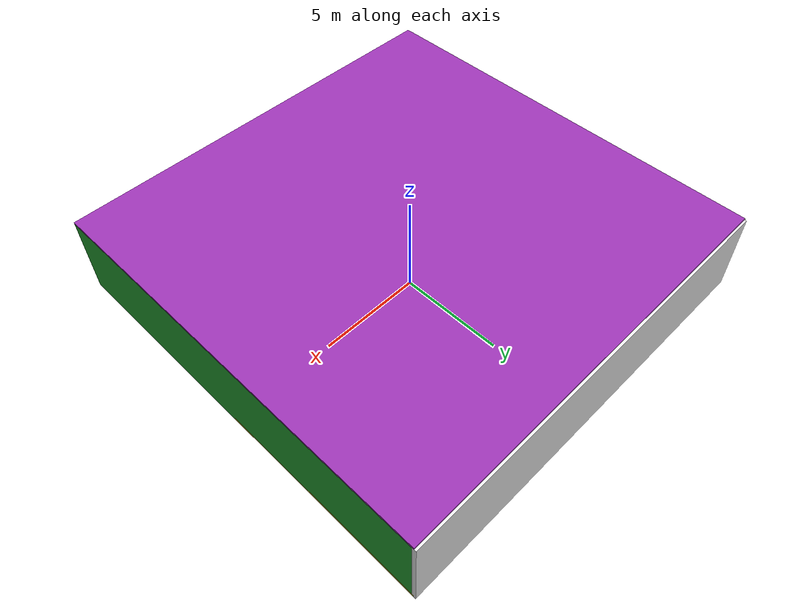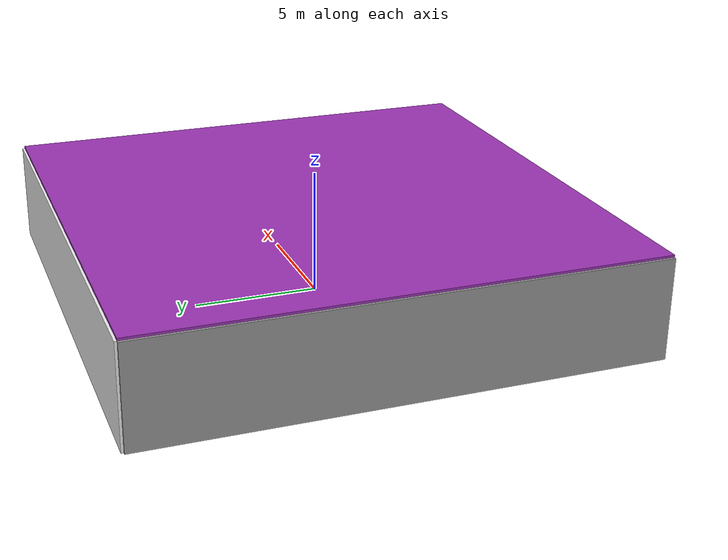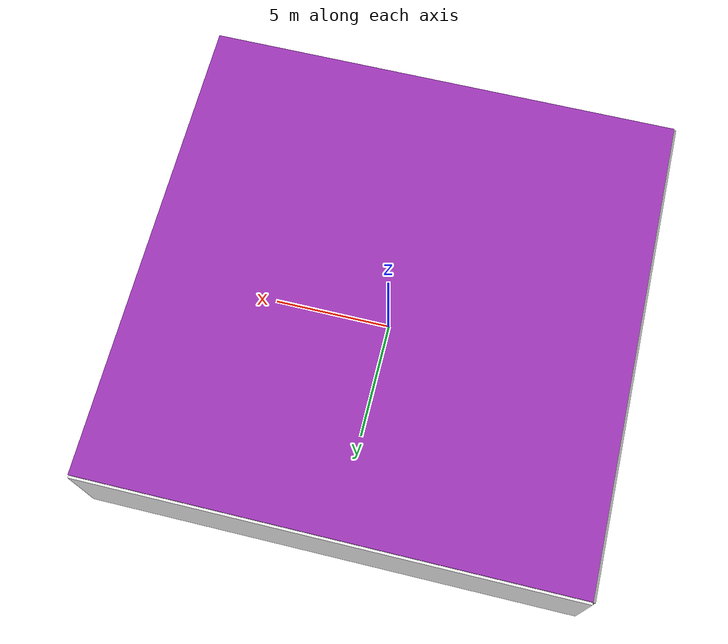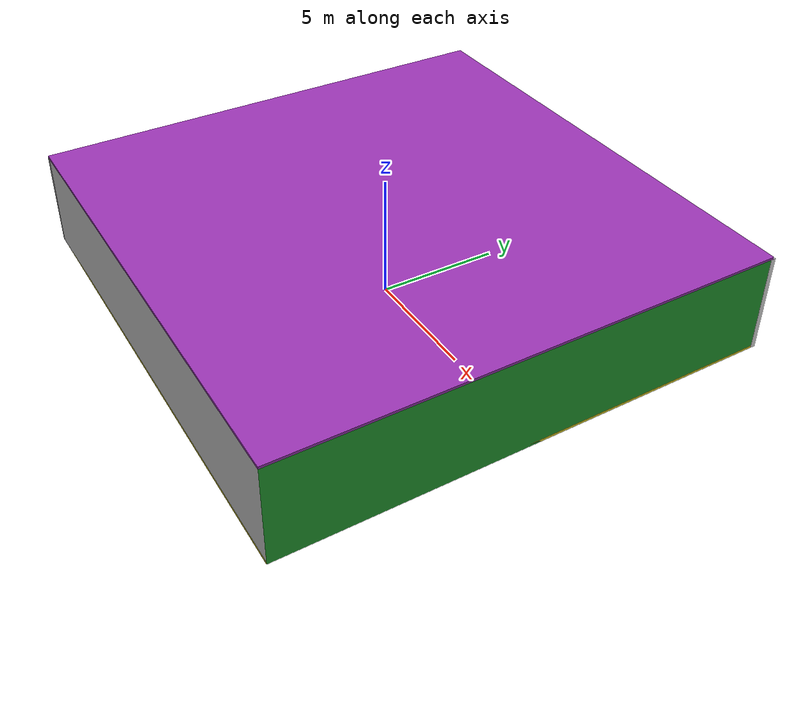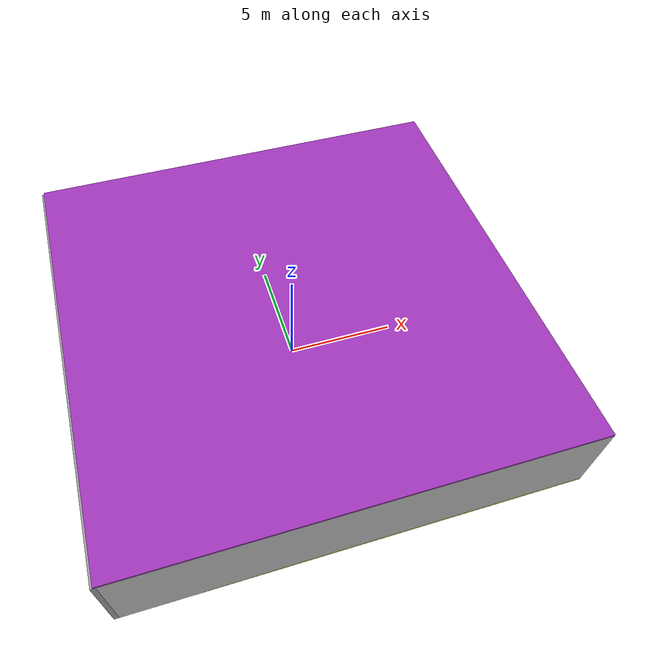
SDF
<sdf version="1.4">
 <world name="default">
  <physics type="ode">
   <max_step_size>0.001</max_step_size>
   <real_time_factor>1</real_time_factor>
   <real_time_update_rate>1000</real_time_update_rate>
   <gravity>0 0 -9.8</gravity>
  </physics>
  <scene><ambient>0.4 0.4 0.4 1</ambient><background>0.7 0.7 0.7 1</background><shadows>1</shadows></scene>
  <model name="Surrounding">
   <static>1</static>
   <link name="Ceiling">
    <collision name="Ceiling_Collision"><geometry><box><size>20 20 0.1</size></box></geometry></collision>
    <visual name="Ceiling_Visual">
     <geometry><box><size>20 20 0.1</size></box></geometry>
     <material>
      <script><uri>file://media/materials/scripts/gazebo.material</uri><name>Gazebo/Purple</name></script>
     </material>
    </visual>
    <pose>0 0 4.05 0 0 0</pose>
   </link>
   <link name="Wall_South">
    <collision name="Wall_South_Collision">
     <geometry><box><size>20 0 4</size></box></geometry>
     <pose>0 0 2 0 -0 0</pose>
    </collision>
    <visual name="Wall_South_Visual">
     <pose>0 0 2 0 -0 0</pose>
     <geometry><box><size>20 0 4</size></box></geometry>
     <material>
      <script><uri>file://media/materials/scripts/gazebo.material</uri><name>Gazebo/LightOn</name></script>
     </material>
    </visual>
    <velocity_decay><linear>0</linear><angular>0</angular></velocity_decay>
    <pose>0 -10 0 0 -0 0</pose>
   </link>
   <link name="Wall_East">
    <collision name="Wall_21_Collision">
     <geometry><box><size>20 0 4</size></box></geometry>
     <pose>0 0 2 0 -0 0</pose>
    </collision>
    <visual name="Wall_21_Visual">
     <pose>0 0 2 0 -0 0</pose>
     <geometry><box><size>20 0 4</size></box></geometry>
     <material>
      <script><uri>file://media/materials/scripts/gazebo.material</uri><name>Gazebo/GreenGlow</name></script>
     </material>
    </visual>
    <velocity_decay><linear>0</linear><angular>0</angular></velocity_decay>
    <pose>10 0 0 0 -0 1.5708</pose>
   </link>
   <link name="Wall_North">
    <collision name="Wall_22_Collision">
     <geometry><box><size>20 0.2 4</size></box></geometry>
     <pose>0 0 2 0 -0 0</pose>
    </collision>
    <visual name="Wall_22_Visual">
     <pose>0 0 2 0 -0 0</pose>
     <geometry><box><size>20 0.2 4</size></box></geometry>
     <material>
      <script><uri>file://media/materials/scripts/gazebo.material</uri><name>Gazebo/White</name></script>
     </material>
    </visual>
    <velocity_decay><linear>0</linear><angular>0</angular></velocity_decay>
    <pose>0 10 0 0 -0 0</pose>
   </link>
   <link name="Wall_West">
    <collision name="Wall_23_Collision">
     <geometry><box><size>20 0.2 4</size></box></geometry>
     <pose>0 0 2 0 -0 0</pose>
    </collision>
    <visual name="Wall_23_Visual">
     <pose>0 0 2 0 -0 0</pose>
     <geometry><box><size>20 0.2 4</size></box></geometry>
     <material>
      <script><uri>file://media/materials/scripts/gazebo.material</uri><name>Gazebo/Grey</name></script>
     </material>
    </visual>
    <velocity_decay><linear>0</linear><angular>0</angular></velocity_decay>
    <pose>-10 0 0 0 0 -1.5708</pose>
   </link>
   <link name="Ground_link">
    <collision name="collision">
     <pose>0 0 .05 0 -0 0</pose>
     <geometry><box><size>20 20 0.1</size></box></geometry>
    </collision>
    <visual name="visual">
     <pose>0 0 .05 0 -0 0</pose>
     <geometry><box><size>20 20 0.1</size></box></geometry>
     <material>
      <script><uri>file://media/materials/scripts/gazebo.material</uri><name>Gazebo/YellowGlow</name></script>
     </material>
    </visual>
   </link>
   <static>1</static>
  </model>
  <spherical_coordinates>
   <surface_model>EARTH_WGS84</surface_model>
   <latitude_deg>0</latitude_deg>
   <longitude_deg>0</longitude_deg>
   <elevation>0</elevation>
   <heading_deg>0</heading_deg>
  </spherical_coordinates>
  <light name="lightball_0" type="diffuse">
   <diffuse>0.8 0.8 0.8 1</diffuse>
   <specular>0.2 0.2 0.2 1</specular>
   <attenuation>
    <range>100</range>
    <constant>0.7</constant>
    <linear>0.01</linear>
    <quadratic>0.001</quadratic>
   </attenuation>
   <direction>-0.5 0.1 -0.9</direction>
   <pose>-1.33403013457 6.0509882912 2.5651942356 0 0 0</pose>
  </light>
  <light name="lightball_1" type="diffuse">
   <diffuse>0.8 0.8 0.8 1</diffuse>
   <specular>0.2 0.2 0.2 1</specular>
   <attenuation>
    <range>100</range>
    <constant>0.7</constant>
    <linear>0.01</linear>
    <quadratic>0.001</quadratic>
   </attenuation>
   <direction>-0.5 0.1 -0.9</direction>
   <pose>3.55696857917 -4.9125691111 3.64657231889 0 0 0</pose>
  </light>
  <light name="lightball_2" type="diffuse">
   <diffuse>0.8 0.8 0.8 1</diffuse>
   <specular>0.2 0.2 0.2 1</specular>
   <attenuation>
    <range>100</range>
    <constant>0.7</constant>
    <linear>0.01</linear>
    <quadratic>0.001</quadratic>
   </attenuation>
   <direction>-0.5 0.1 -0.9</direction>
   <pose>-8.62755327221 5.05632669542 0.889996858037 0 0 0</pose>
  </light>
  <light name="lightball_3" type="diffuse">
   <diffuse>0.8 0.8 0.8 1</diffuse>
   <specular>0.2 0.2 0.2 1</specular>
   <attenuation>
    <range>100</range>
    <constant>0.7</constant>
    <linear>0.01</linear>
    <quadratic>0.001</quadratic>
   </attenuation>
   <direction>-0.5 0.1 -0.9</direction>
   <pose>2.42017001636 7.52498927534 1.09606221438 0 0 0</pose>
  </light>
  <light name="lightball_4" type="diffuse">
   <diffuse>0.8 0.8 0.8 1</diffuse>
   <specular>0.2 0.2 0.2 1</specular>
   <attenuation>
    <range>100</range>
    <constant>0.7</constant>
    <linear>0.01</linear>
    <quadratic>0.001</quadratic>
   </attenuation>
   <direction>-0.5 0.1 -0.9</direction>
   <pose>3.30128326739 -7.00310188066 1.09916711281 0 0 0</pose>
  </light>
  <include>
   <uri>model://textured_shapes</uri>
   <pose>-7.41352803545 -4.20252578981 0 0 0 2.36090208982</pose>
  </include>
  <include><uri>model://cabinet</uri><pose>-7.65574615702 3.7188495788 0 0 0 1.57856764113</pose></include>
  <include><uri>model://cabinet</uri><pose>-4.87046011721 -6.79128840979 0 0 0 1.82100239992</pose></include>
  <include><uri>model://cabinet</uri><pose>-4.67774945501 -4.34414120568 0 0 0 2.15873352371</pose></include>
  <include><uri>model://cabinet</uri><pose>-4.12190827552 8.12453063341 0 0 0 0.419772748688</pose></include>
  <include><uri>model://cabinet</uri><pose>-1.70408674339 4.01028008738 0 0 0 2.96999821956</pose></include>
  <include>
   <uri>model://construction_cone</uri>
   <pose>1.95651143143 -4.3758620498 0 0 0 0.342640139409</pose>
  </include>
  <include>
   <uri>model://construction_cone</uri>
   <pose>1.07544322548 7.12413235749 0 0 0 1.41971247858</pose>
  </include>
  <include><uri>model://table</uri><pose>7.50136594377 -8.20801679953 0 0 0 1.59942949989</pose></include>
  <include>
   <uri>model://construction_cone</uri>
   <pose>8.10321524796 1.93651944583 0 0 0 0.94311323951</pose>
  </include>
  <include><uri>model://cabinet</uri><pose>7.72512953339 7.94201835319 0 0 0 0.13350886041</pose></include>
 </world>
</sdf>

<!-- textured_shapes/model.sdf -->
<sdf version="1.6">
  <model name="textured_shapes">
    <pose>0 0 0.5 0 0 0</pose>
    <link name="box">
      <pose>0 -1.5 0 0 0 0</pose>
      <collision name="collision">
        <geometry>
          <box>
            <size>1 1 1</size>
          </box>
        </geometry>
      </collision>
      <visual name="visual">
        <geometry>
          <box>
            <size>1 1 1</size>
          </box>
        </geometry>
        <material>
          <script>
            <uri>model://../model_source/models/textured_shapes/materials/scripts</uri>
            <uri>model://../model_source/models/textured_shapes/materials/textures</uri>
            <name>TexturedShape/Squares</name>
          </script>
        </material>
      </visual>
    </link>
    <link name="sphere">
      <collision name="collision">
        <geometry>
          <sphere>
            <radius>0.5</radius>
          </sphere>
        </geometry>
      </collision>
      <visual name="visual">
        <geometry>
          <sphere>
            <radius>0.5</radius>
          </sphere>
        </geometry>
        <material>
          <script>
            <uri>model://../model_source/models/textured_shapes/materials/scripts</uri>
            <uri>model://../model_source/models/textured_shapes/materials/textures</uri>
            <name>TexturedShape/Squares</name>
          </script>
        </material>
      </visual>
    </link>
    <link name="cylinder">
      <pose>0 1.5 0 0 0 0</pose>
      <collision name="collision">
        <geometry>
          <cylinder>
            <radius>0.5</radius>
            <length>1</length>
          </cylinder>
        </geometry>
      </collision>
      <visual name="visual">
        <geometry>
          <cylinder>
            <radius>0.5</radius>
            <length>1</length>
          </cylinder>
        </geometry>
        <material>
          <script>
            <uri>model://../model_source/models/textured_shapes/materials/scripts</uri>
            <uri>model://../model_source/models/textured_shapes/materials/textures</uri>
            <name>TexturedShape/Squares</name>
          </script>
        </material>
      </visual>
    </link>
  </model>
</sdf>

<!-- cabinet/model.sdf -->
<sdf version="1.5">
  <model name="cabinet">
    <static>true</static>
    <link name="cabinet_bottom_plate">
      <inertial>
        <pose>0 0 -1 0 0 0</pose>
        <inertia>
          <ixx>2.050000</ixx>
          <ixy>0</ixy>
          <ixz>0</ixz>
          <iyy>2.050000</iyy>
          <iyz>0</iyz>
          <izz>2.050000</izz>
        </inertia>
        <mass>25.000000</mass>
      </inertial>
      <collision name="cabinet_bottom_plate_geom">
        <pose>0 0 0.010000 0 0 0</pose>
        <geometry>
          <box>
            <size>0.450000 0.450000 0.020000</size>
          </box>
        </geometry>
      </collision>
      <visual name="cabinet_bottom_plate_geom_visual">
        <pose>0 0 0.010000 0 0 0</pose>
        <geometry>
          <box>
            <size>0.450000 0.450000 0.020000</size>
          </box>
        </geometry>
        <material>
          <script>
            <uri>model://media/materials/scripts/gazebo.material</uri>
            <name>Gazebo/Wood</name>
          </script>
        </material>
      </visual>
      <collision name="cabinet_bottom_plate_geom_cabinet_back_plate">
        <pose>0.235000 0 0.510000 0 0 0</pose>
        <geometry>
          <box>
            <size>0.020000 0.450000 1.020000</size>
          </box>
        </geometry>
      </collision>
      <visual name="cabinet_bottom_plate_geom_cabinet_back_plate_visual">
        <pose>0.235000 0 0.510000 0 0 0</pose>
        <geometry>
          <box>
            <size>0.020000 0.450000 1.020000</size>
          </box>
        </geometry>
        <material>
          <script>
            <uri>model://media/materials/scripts/gazebo.material</uri>
            <name>Gazebo/Wood</name>
          </script>
        </material>
      </visual>
      <collision name="cabinet_bottom_plate_geom_cabinet_left_plate">
        <pose>0 0.235000 0.510000 0 0 0</pose>
        <geometry>
          <box>
            <size>0.450000 0.020000 1.020000</size>
          </box>
        </geometry>
      </collision>
      <visual name="cabinet_bottom_plate_geom_cabinet_left_plate_visual">
        <pose>0 0.235000 0.510000 0 0 0</pose>
        <geometry>
          <box>
            <size>0.450000 0.020000 1.020000</size>
          </box>
        </geometry>
        <material>
          <script>
            <uri>model://media/materials/scripts/gazebo.material</uri>
            <name>Gazebo/Wood</name>
          </script>
        </material>
      </visual>
      <collision name="cabinet_bottom_plate_geom_cabinet_middle_plate">
        <pose>0 0 0.510000 0 0 0</pose>
        <geometry>
          <box>
            <size>0.450000 0.450000 0.020000</size>
          </box>
        </geometry>
      </collision>
      <visual name="cabinet_bottom_plate_geom_cabinet_middle_plate_visual">
        <pose>0 0 0.510000 0 0 0</pose>
        <geometry>
          <box>
            <size>0.450000 0.450000 0.020000</size>
          </box>
        </geometry>
        <material>
          <script>
            <uri>model://media/materials/scripts/gazebo.material</uri>
            <name>Gazebo/Wood</name>
          </script>
        </material>
      </visual>
      <collision name="cabinet_bottom_plate_geom_cabinet_right_plate">
        <pose>0 -0.235000 0.510000 0 0 0</pose>
        <geometry>
          <box>
            <size>0.450000 0.020000 1.020000</size>
          </box>
        </geometry>
      </collision>
      <visual name="cabinet_bottom_plate_geom_cabinet_right_plate_visual">
        <pose>0 -0.235000 0.510000 0 0 0</pose>
        <geometry>
          <box>
            <size>0.450000 0.020000 1.020000</size>
          </box>
        </geometry>
        <material>
          <script>
            <uri>model://media/materials/scripts/gazebo.material</uri>
            <name>Gazebo/Wood</name>
          </script>
        </material>
      </visual>
      <collision name="cabinet_bottom_plate_geom_cabinet_top_plate">
        <pose>0 0 1.010000 0 0 0</pose>
        <geometry>
          <box>
            <size>0.450000 0.450000 0.020000</size>
          </box>
        </geometry>
      </collision>
      <visual name="cabinet_bottom_plate_geom_cabinet_top_plate_visual">
        <pose>0 0 1.010000 0 0 0</pose>
        <geometry>
          <box>
            <size>0.450000 0.450000 0.020000</size>
          </box>
        </geometry>
        <material>
          <script>
            <uri>model://media/materials/scripts/gazebo.material</uri>
            <name>Gazebo/Wood</name>
          </script>
        </material>
      </visual>
    </link>
  </model>
</sdf>

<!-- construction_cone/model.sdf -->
<sdf version="1.5">
  <model name="Construction Cone">
    <link name="link">
      <collision name="collision">
        <geometry>
          <mesh>
            <scale>10 10 10</scale>
            <uri>file://isr-testbed/construction_cone/meshes/construction_cone.dae</uri>
          </mesh>
        </geometry>
      </collision>
      <visual name="visual">
        <geometry>
          <mesh>
            <scale>10 10 10</scale>
            <uri>file://isr-testbed/construction_cone/meshes/construction_cone.dae</uri>
          </mesh>
        </geometry>
      </visual>
    </link>
  </model>
</sdf>

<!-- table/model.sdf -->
<sdf version="1.5">
  <model name="table">
    <static>true</static>
    <link name="link">
      <collision name="surface">
        <pose>0 0 1.0 0 0 0</pose>
        <geometry>
          <box>
            <size>1.5 0.8 0.03</size>
          </box>
        </geometry>
        <surface>
          <friction>
            <ode>
              <mu>0.6</mu>
              <mu2>0.6</mu2>
            </ode>
          </friction>
        </surface>
      </collision>
      <visual name="visual1">
        <pose>0 0 1.0 0 0 0</pose>
        <geometry>
          <box>
            <size>1.5 0.8 0.03</size>
          </box>
        </geometry>
        <material>
          <script>
            <uri>model://media/materials/scripts/gazebo.material</uri>
            <name>Gazebo/Wood</name>
          </script>
        </material>
      </visual>
      <collision name="front_left_leg">
        <pose>0.68 0.38 0.5 0 0 0</pose>
        <geometry>
          <cylinder>
            <radius>0.02</radius>
            <length>1.0</length>
          </cylinder>
        </geometry>
      </collision>
      <visual name="front_left_leg">
        <pose>0.68 0.38 0.5 0 0 0</pose>
        <geometry>
          <cylinder>
            <radius>0.02</radius>
            <length>1.0</length>
          </cylinder>
        </geometry>
        <material>
          <script>
            <uri>model://media/materials/scripts/gazebo.material</uri>
            <name>Gazebo/Grey</name>
          </script>
        </material>
      </visual>
      <collision name="front_right_leg">
        <pose>0.68 -0.38 0.5 0 0 0</pose>
        <geometry>
          <cylinder>
            <radius>0.02</radius>
            <length>1.0</length>
          </cylinder>
        </geometry>
      </collision>
      <visual name="front_right_leg">
        <pose>0.68 -0.38 0.5 0 0 0</pose>
        <geometry>
          <cylinder>
            <radius>0.02</radius>
            <length>1.0</length>
          </cylinder>
        </geometry>
        <material>
          <script>
            <uri>model://media/materials/scripts/gazebo.material</uri>
            <name>Gazebo/Grey</name>
          </script>
        </material>
      </visual>
      <collision name="back_right_leg">
        <pose>-0.68 -0.38 0.5 0 0 0</pose>
        <geometry>
          <cylinder>
            <radius>0.02</radius>
            <length>1.0</length>
          </cylinder>
        </geometry>
      </collision>
      <visual name="back_right_leg">
        <pose>-0.68 -0.38 0.5 0 0 0</pose>
        <geometry>
          <cylinder>
            <radius>0.02</radius>
            <length>1.0</length>
          </cylinder>
        </geometry>
        <material>
          <script>
            <uri>model://media/materials/scripts/gazebo.material</uri>
            <name>Gazebo/Grey</name>
          </script>
        </material>
      </visual>
      <collision name="back_left_leg">
        <pose>-0.68 0.38 0.5 0 0 0</pose>
        <geometry>
          <cylinder>
            <radius>0.02</radius>
            <length>1.0</length>
          </cylinder>
        </geometry>
      </collision>
      <visual name="back_left_leg">
        <pose>-0.68 0.38 0.5 0 0 0</pose>
        <geometry>
          <cylinder>
            <radius>0.02</radius>
            <length>1.0</length>
          </cylinder>
        </geometry>
        <material>
          <script>
            <uri>model://media/materials/scripts/gazebo.material</uri>
            <name>Gazebo/Grey</name>
          </script>
        </material>
      </visual>
    </link>
  </model>
</sdf>
